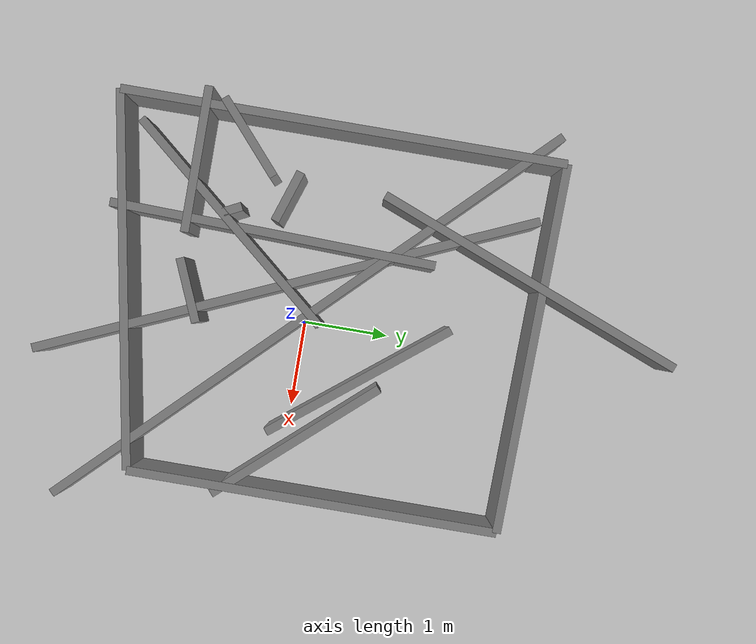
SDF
<?xml version='1.0' encoding='utf-8'?>
<sdf version="1.8">
  <world name="myWorld">
    <physics name="1ms" type="ignored">
      <max_step_size>0.001</max_step_size>
      <real_time_factor>1</real_time_factor>
      <real_time_update_rate>1000</real_time_update_rate>
    </physics>
    <plugin name="ignition::gazebo::systems::Physics" filename="ignition-gazebo-physics-system" />
    <plugin name="ignition::gazebo::systems::UserCommands" filename="ignition-gazebo-user-commands-system" />
    <plugin name="ignition::gazebo::systems::SceneBroadcaster" filename="ignition-gazebo-scene-broadcaster-system" />
    <plugin name="ignition::gazebo::systems::Contact" filename="ignition-gazebo-contact-system" />
    <gravity>0 0 -9.8</gravity>
    <magnetic_field>6e-06 2.3e-05 -4.2e-05</magnetic_field>
    <atmosphere type="adiabatic" />
    <scene>
      <ambient>0.4 0.4 0.4 1</ambient>
      <background>0.7 0.7 0.7 1</background>
      <shadows>true</shadows>
    </scene>
    <model name="ground_plane">
      <static>true</static>
      <link name="link">
        <collision name="collision">
          <geometry>
            <plane>
              <normal>0 0 1</normal>
              <size>100 100</size>
            </plane>
          </geometry>
          <surface>
            <friction>
              <ode />
            </friction>
            <bounce />
            <contact />
          </surface>
        </collision>
        <visual name="visual">
          <geometry>
            <plane>
              <normal>0 0 1</normal>
              <size>100 100</size>
            </plane>
          </geometry>
          <material>
            <ambient>0.8 0.8 0.8 1</ambient>
            <diffuse>0.8 0.8 0.8 1</diffuse>
            <specular>0.8 0.8 0.8 1</specular>
          </material>
        </visual>
        <pose>0 0 0 0 0 0</pose>
        <inertial>
          <pose>0 0 0 0 0 0</pose>
          <mass>1</mass>
          <inertia>
            <ixx>1</ixx>
            <ixy>0</ixy>
            <ixz>0</ixz>
            <iyy>1</iyy>
            <iyz>0</iyz>
            <izz>1</izz>
          </inertia>
        </inertial>
        <enable_wind>false</enable_wind>
      </link>
      <pose>0 0 0 0 0 0</pose>
      <self_collide>false</self_collide>
    </model>
    <light name="sun" type="directional">
      <pose>0 0 10 0 0 0</pose>
      <cast_shadows>true</cast_shadows>
      <intensity>1</intensity>
      <direction>-0.5 0.1 -0.9</direction>
      <diffuse>0.8 0.8 0.8 1</diffuse>
      <specular>0.2 0.2 0.2 1</specular>
      <attenuation>
        <range>1000</range>
        <linear>0.01</linear>
        <constant>0.9</constant>
        <quadratic>0.001</quadratic>
      </attenuation>
      <spot>
        <inner_angle>0</inner_angle>
        <outer_angle>0</outer_angle>
        <falloff>0</falloff>
      </spot>
    </light>
  <model name="wall_2">
            <pose>-1.65 -1.5 0.5 0 0 0.0</pose>
            <link name="link">
                <collision name="collision">
                    <geometry><box><size>1.7 0.1 1.0</size></box></geometry>
                </collision>
                <visual name="visual">
                    <geometry><box><size>1.7 0.1 1.0</size></box></geometry>
                    <material>
                        <diffuse>0.5 0.5 0.5 1</diffuse>
                    </material>
                </visual>
            </link>
        </model><model name="wall_3">
            <pose>-1.15 -1.0 0.5 0 0 -1.107148717794091</pose>
            <link name="link">
                <collision name="collision">
                    <geometry><box><size>0.22360679774997896 0.1 1.0</size></box></geometry>
                </collision>
                <visual name="visual">
                    <geometry><box><size>0.22360679774997896 0.1 1.0</size></box></geometry>
                    <material>
                        <diffuse>0.5 0.5 0.5 1</diffuse>
                    </material>
                </visual>
            </link>
        </model><model name="wall_4">
            <pose>-1.4 -0.4 0.5 0 0 -0.3217505543966423</pose>
            <link name="link">
                <collision name="collision">
                    <geometry><box><size>0.6324555320336757 0.1 1.0</size></box></geometry>
                </collision>
                <visual name="visual">
                    <geometry><box><size>0.6324555320336757 0.1 1.0</size></box></geometry>
                    <material>
                        <diffuse>0.5 0.5 0.5 1</diffuse>
                    </material>
                </visual>
            </link>
        </model><model name="wall_5">
            <pose>-0.15 -1.35 0.5 0 0 -2.7367008673047097</pose>
            <link name="link">
                <collision name="collision">
                    <geometry><box><size>0.7615773105863908 0.1 1.0</size></box></geometry>
                </collision>
                <visual name="visual">
                    <geometry><box><size>0.7615773105863908 0.1 1.0</size></box></geometry>
                    <material>
                        <diffuse>0.5 0.5 0.5 1</diffuse>
                    </material>
                </visual>
            </link>
        </model><model name="wall_6">
            <pose>-2.0 -0.95 0.5 0 0 0.7188299996216246</pose>
            <link name="link">
                <collision name="collision">
                    <geometry><box><size>1.0630145812734648 0.1 1.0</size></box></geometry>
                </collision>
                <visual name="visual">
                    <geometry><box><size>1.0630145812734648 0.1 1.0</size></box></geometry>
                    <material>
                        <diffuse>0.5 0.5 0.5 1</diffuse>
                    </material>
                </visual>
            </link>
        </model><model name="wall_7">
            <pose>-0.9 2.5 0.5 0 0 1.1999050379822342</pose>
            <link name="link">
                <collision name="collision">
                    <geometry><box><size>3.862641583165593 0.1 1.0</size></box></geometry>
                </collision>
                <visual name="visual">
                    <geometry><box><size>3.862641583165593 0.1 1.0</size></box></geometry>
                    <material>
                        <diffuse>0.5 0.5 0.5 1</diffuse>
                    </material>
                </visual>
            </link>
        </model><model name="wall_8">
            <pose>-1.0 -1.0 0.5 0 0 0.8760580505981935</pose>
            <link name="link">
                <collision name="collision">
                    <geometry><box><size>3.124099870362662 0.1 1.0</size></box></geometry>
                </collision>
                <visual name="visual">
                    <geometry><box><size>3.124099870362662 0.1 1.0</size></box></geometry>
                    <material>
                        <diffuse>0.5 0.5 0.5 1</diffuse>
                    </material>
                </visual>
            </link>
        </model><model name="wall_9">
            <pose>0.55 0.75 0.5 0 0 2.2390857456254807</pose>
            <link name="link">
                <collision name="collision">
                    <geometry><box><size>2.420743687382041 0.1 1.0</size></box></geometry>
                </collision>
                <visual name="visual">
                    <geometry><box><size>2.420743687382041 0.1 1.0</size></box></geometry>
                    <material>
                        <diffuse>0.5 0.5 0.5 1</diffuse>
                    </material>
                </visual>
            </link>
        </model><model name="wall_10">
            <pose>-2.3 0.10000000000000009 0.5 0 0 1.5707963267948966</pose>
            <link name="link">
                <collision name="collision">
                    <geometry><box><size>5.2 0.1 1.0</size></box></geometry>
                </collision>
                <visual name="visual">
                    <geometry><box><size>5.2 0.1 1.0</size></box></geometry>
                    <material>
                        <diffuse>0.5 0.5 0.5 1</diffuse>
                    </material>
                </visual>
            </link>
        </model><model name="wall_11">
            <pose>-0.1499999999999999 2.6500000000000004 0.5 0 0 -0.023251622810462936</pose>
            <link name="link">
                <collision name="collision">
                    <geometry><box><size>4.301162633521313 0.1 1.0</size></box></geometry>
                </collision>
                <visual name="visual">
                    <geometry><box><size>4.301162633521313 0.1 1.0</size></box></geometry>
                    <material>
                        <diffuse>0.5 0.5 0.5 1</diffuse>
                    </material>
                </visual>
            </link>
        </model><model name="wall_12">
            <pose>2.0 0.45000000000000007 0.5 0 0 -1.5707963267948966</pose>
            <link name="link">
                <collision name="collision">
                    <geometry><box><size>4.3 0.1 1.0</size></box></geometry>
                </collision>
                <visual name="visual">
                    <geometry><box><size>4.3 0.1 1.0</size></box></geometry>
                    <material>
                        <diffuse>0.5 0.5 0.5 1</diffuse>
                    </material>
                </visual>
            </link>
        </model><model name="wall_13">
            <pose>-0.1499999999999999 -2.1 0.5 0 0 -2.957649197052618</pose>
            <link name="link">
                <collision name="collision">
                    <geometry><box><size>4.3737855457258075 0.1 1.0</size></box></geometry>
                </collision>
                <visual name="visual">
                    <geometry><box><size>4.3737855457258075 0.1 1.0</size></box></geometry>
                    <material>
                        <diffuse>0.5 0.5 0.5 1</diffuse>
                    </material>
                </visual>
            </link>
        </model><model name="wall_14">
            <pose>-0.95 -0.5 0.5 0 0 1.5444866095419745</pose>
            <link name="link">
                <collision name="collision">
                    <geometry><box><size>3.8013155617496426 0.1 1.0</size></box></geometry>
                </collision>
                <visual name="visual">
                    <geometry><box><size>3.8013155617496426 0.1 1.0</size></box></geometry>
                    <material>
                        <diffuse>0.5 0.5 0.5 1</diffuse>
                    </material>
                </visual>
            </link>
            <type>wall</type>
        </model><model name="wall_15">
            <pose>-0.10000000000000009 0.050000000000000044 0.5 0 0 2.3462938236043565</pose>
            <link name="link">
                <collision name="collision">
                    <geometry><box><size>7.142128534267638 0.1 1.0</size></box></geometry>
                </collision>
                <visual name="visual">
                    <geometry><box><size>7.142128534267638 0.1 1.0</size></box></geometry>
                    <material>
                        <diffuse>0.5 0.5 0.5 1</diffuse>
                    </material>
                </visual>
            </link>
            <type>wall</type>
        </model><model name="wall_16">
            <pose>1.35 0.15000000000000002 0.5 0 0 -0.8478169733934057</pose>
            <link name="link">
                <collision name="collision">
                    <geometry><box><size>2.2671568097509267 0.1 1.0</size></box></geometry>
                </collision>
                <visual name="visual">
                    <geometry><box><size>2.2671568097509267 0.1 1.0</size></box></geometry>
                    <material>
                        <diffuse>0.5 0.5 0.5 1</diffuse>
                    </material>
                </visual>
            </link>
            <type>wall</type>
        </model><model name="wall_17">
            <pose>-0.4 -0.25 0.5 0 0 -1.1593400833811942</pose>
            <link name="link">
                <collision name="collision">
                    <geometry><box><size>6.000833275471 0.1 1.0</size></box></geometry>
                </collision>
                <visual name="visual">
                    <geometry><box><size>6.000833275471 0.1 1.0</size></box></geometry>
                    <material>
                        <diffuse>0.5 0.5 0.5 1</diffuse>
                    </material>
                </visual>
            </link>
            <type>wall</type>
        </model></world>
</sdf>
